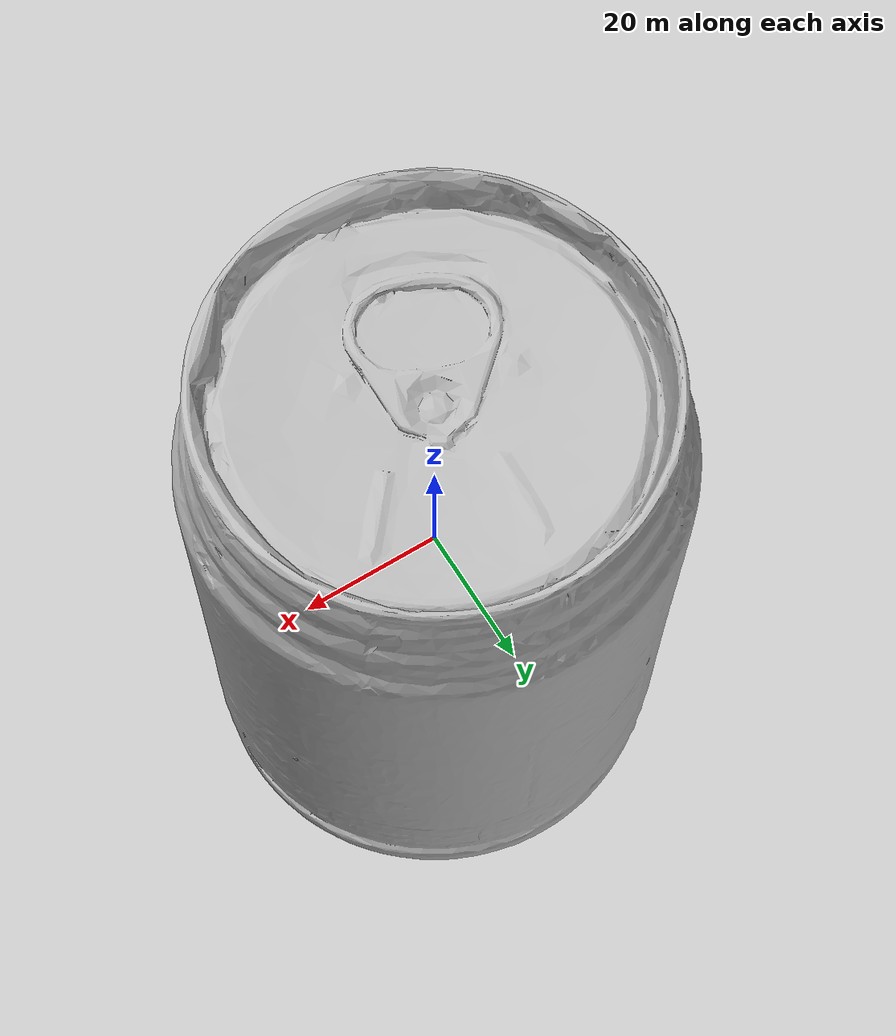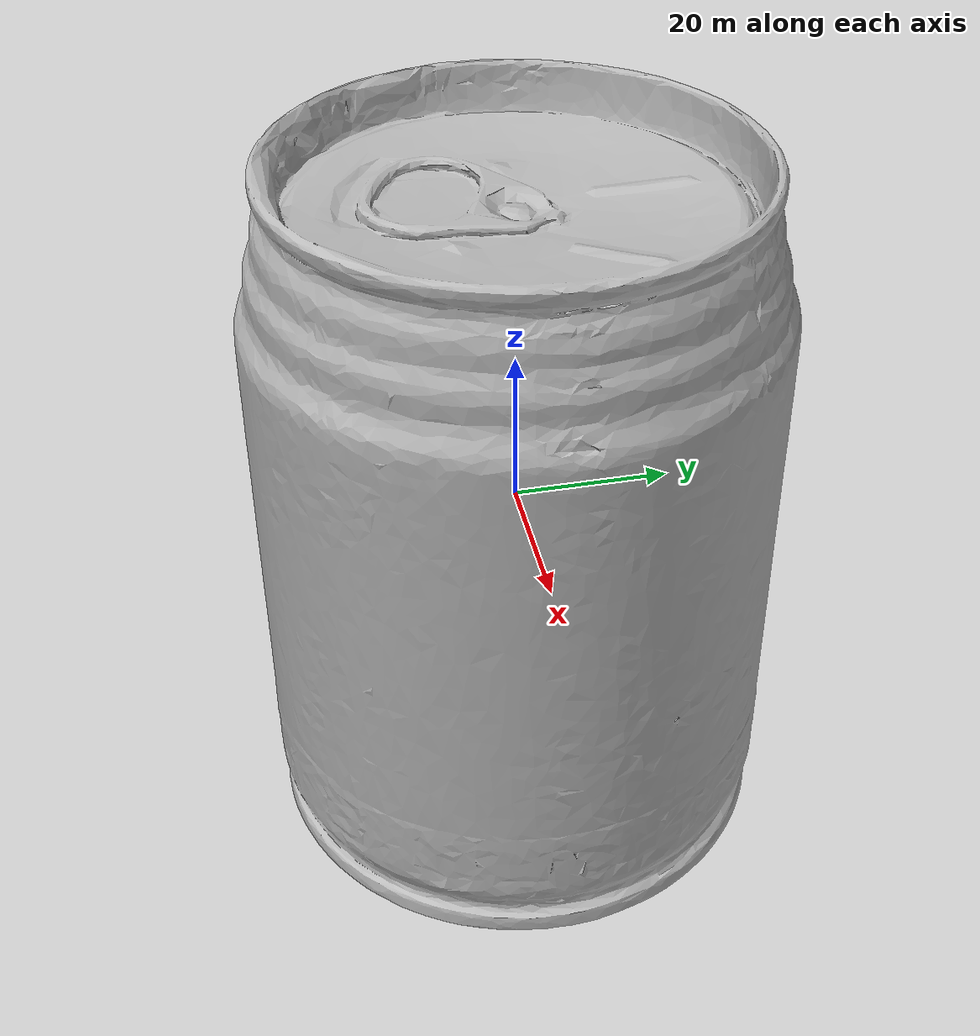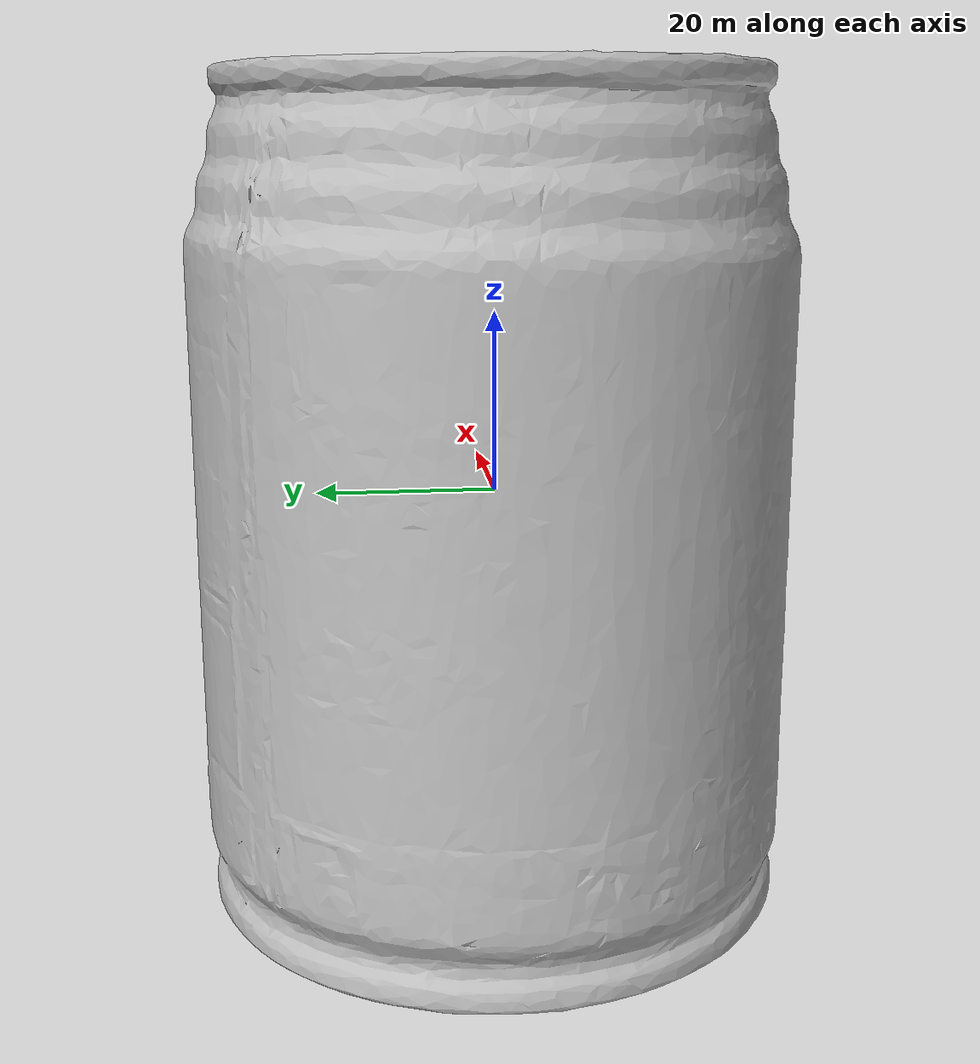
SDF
<sdf version="1.4">
 <world name="default">
  <light name="light1" type="point">
   <pose>0 0 1 0 0 0</pose>
   <diffuse>3 3 3 1</diffuse>
   <specular>3 3 3 1</specular>
  </light>
  <light name="light2" type="point">
   <pose>0 0.5 2 0 0 0</pose>
   <diffuse>1 1 1 1</diffuse>
   <specular>1 1 1 1</specular>
  </light>
  <light name="light3" type="point">
   <pose>0 0.5 2 0 0 0</pose>
   <diffuse>3 3 3 1</diffuse>
   <specular>3 3 3 1</specular>
  </light>
  <scene><ambient>0.7 0.7 0.7</ambient></scene>
  <model name="box1">
   <link name="link_box1">
    <collision name="default">
     <geometry>
      <mesh><uri>model://wooden_puzzle1/collision_meshes/collision.obj</uri><scale>1.0 1.0 1.0</scale></mesh>
     </geometry>
     <surface><friction><ode><mu>0.5</mu><mu2>0.5</mu2></ode></friction></surface>
    </collision>
    <visual name="default">
     <geometry>
      <mesh><uri>model://wooden_puzzle1/visual_meshes/visual.dae</uri><scale>1.0 1.0 1.0</scale></mesh>
     </geometry>
    </visual>
    <inertial>
     <mass>0.025116289034485817</mass>
     <pose>-0.00017350679263472557 7.972260937094688e-05 -9.191555000143126e-05 -0.07784885804399136 -0.2636065522190298 -0.5528757227143044</pose>
     <inertia>
      <ixx>4.7387575e-06</ixx>
      <iyy>4.647534e-06</iyy>
      <izz>4.7029785e-06</izz>
      <ixy>0</ixy>
      <ixz>0</ixz>
      <iyz>0</iyz>
     </inertia>
    </inertial>
   </link>
   <pose>0.16000671684741974 -0.3100062906742096 0.016866667196154594 0.006190174655980682 -0.009709426996702445 -0.0001351403125158789</pose>
  </model>
  <model name="box3">
   <link name="link_box3">
    <collision name="default">
     <geometry>
      <mesh><uri>model://wooden_puzzle2/collision_meshes/collision.obj</uri><scale>1.0 1.0 1.0</scale></mesh>
     </geometry>
     <surface><friction><ode><mu>0.5</mu><mu2>0.5</mu2></ode></friction></surface>
    </collision>
    <visual name="default">
     <geometry>
      <mesh><uri>model://wooden_puzzle2/visual_meshes/visual.dae</uri><scale>1.0 1.0 1.0</scale></mesh>
     </geometry>
    </visual>
    <inertial>
     <mass>0.025376593694090843</mass>
     <pose>2.7402536943554878e-05 4.997663199901581e-05 6.587122334167361e-05 -0.1920355258808483 0.6112750807505014 -0.6338716229052327</pose>
     <inertia>
      <ixx>4.7172375e-06</ixx>
      <iyy>4.8472266e-06</iyy>
      <izz>4.778271e-06</izz>
      <ixy>0</ixy>
      <ixz>0</ixz>
      <iyz>0</iyz>
     </inertia>
    </inertial>
   </link>
   <pose>0.029894806444644928 -0.2900235950946808 0.01691773347556591 0.02084864641033712 0.000721013024616697 0.00023659268616615725</pose>
  </model>
  <model name="can1">
   <link name="link_can1">
    <collision name="default">
     <geometry>
      <mesh><uri>model://redbull/collision_meshes/collision.obj</uri><scale>1.0 1.0 1.0</scale></mesh>
     </geometry>
     <surface><friction><ode><mu>0.5</mu><mu2>0.5</mu2></ode></friction></surface>
    </collision>
    <visual name="default">
     <geometry>
      <mesh><uri>model://redbull/visual_meshes/visual.dae</uri><scale>1.0 1.0 1.0</scale></mesh>
     </geometry>
    </visual>
    <inertial>
     <mass>0.2544018626213074</mass>
     <pose>-2.2126756448415108e-05 -0.0001265947794308886 -0.0006860987632535398 0.0011376600102847077 -0.01080087162846833 0.5858227764205248</pose>
     <inertia>
      <ixx>0.00023919248</ixx>
      <iyy>0.00023939437</iyy>
      <izz>0.00014194298</izz>
      <ixy>0</ixy>
      <ixz>0</ixz>
      <iyz>0</iyz>
     </inertia>
    </inertial>
   </link>
   <pose>0.1601594090461731 0.3206026554107666 0.04638563469052315 -0.010489539354543295 0.007260095567480613 -0.0002240552898535303</pose>
  </model>
  <model name="can2">
   <link name="link_can2">
    <collision name="default">
     <geometry>
      <mesh><uri>model://pepsi/collision_meshes/collision.obj</uri><scale>1.0 1.0 1.0</scale></mesh>
     </geometry>
     <surface><friction><ode><mu>0.5</mu><mu2>0.5</mu2></ode></friction></surface>
    </collision>
    <visual name="default">
     <geometry><mesh><uri>model://pepsi/visual_meshes/visual.dae</uri><scale>1.0 1.0 1.0</scale></mesh></geometry>
    </visual>
    <inertial>
     <mass>0.4552207291126251</mass>
     <pose>-7.5590331107378e-05 2.99312814604491e-05 -0.0003384356095921248 -0.0010679690801074441 -0.0021734768369219134 0.5674650232372158</pose>
     <inertia>
      <ixx>0.0009068869</ixx>
      <iyy>0.0009062263</iyy>
      <izz>0.00019301806</izz>
      <ixy>0</ixy>
      <ixz>0</ixz>
      <iyz>0</iyz>
     </inertia>
    </inertial>
   </link>
   <pose>-0.09998184442520142 0.31995174288749695 0.07449626177549362 -1.6419451891928065e-05 1.770450309044233e-06 -4.549496120810833e-06</pose>
  </model>
 </world>
</sdf>
